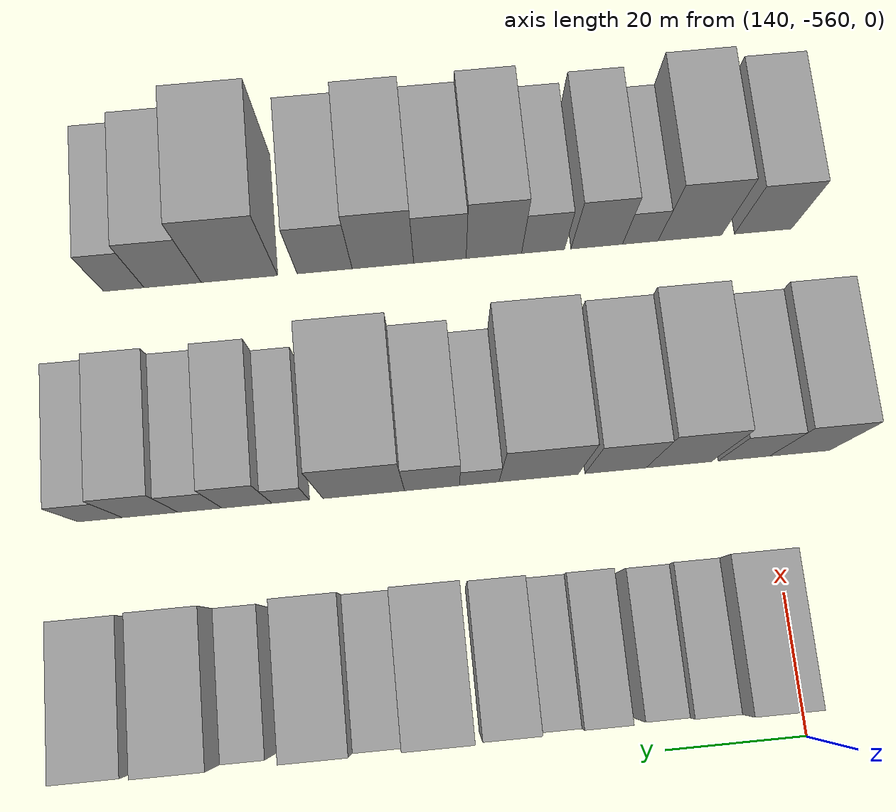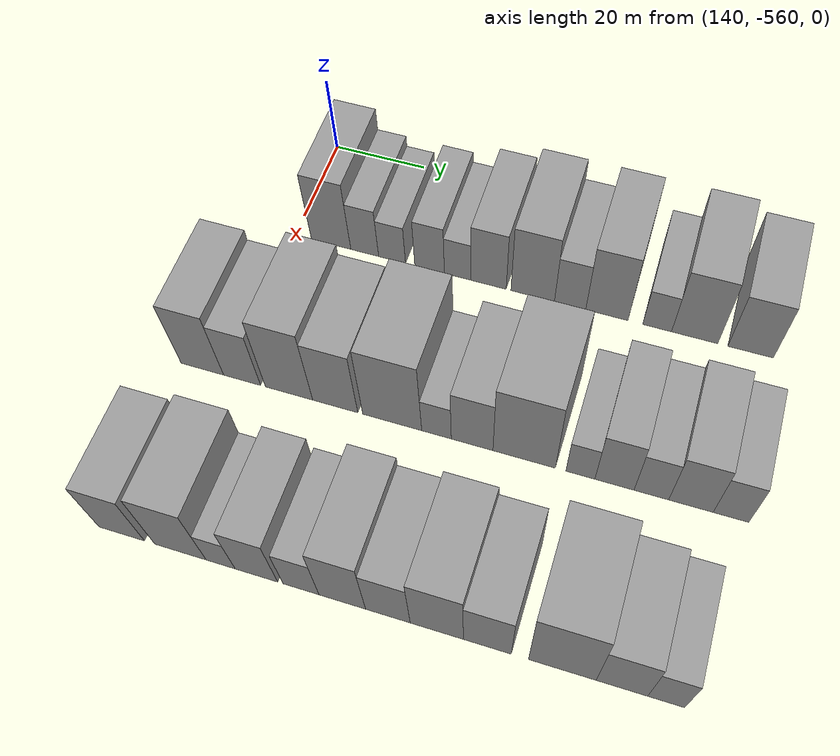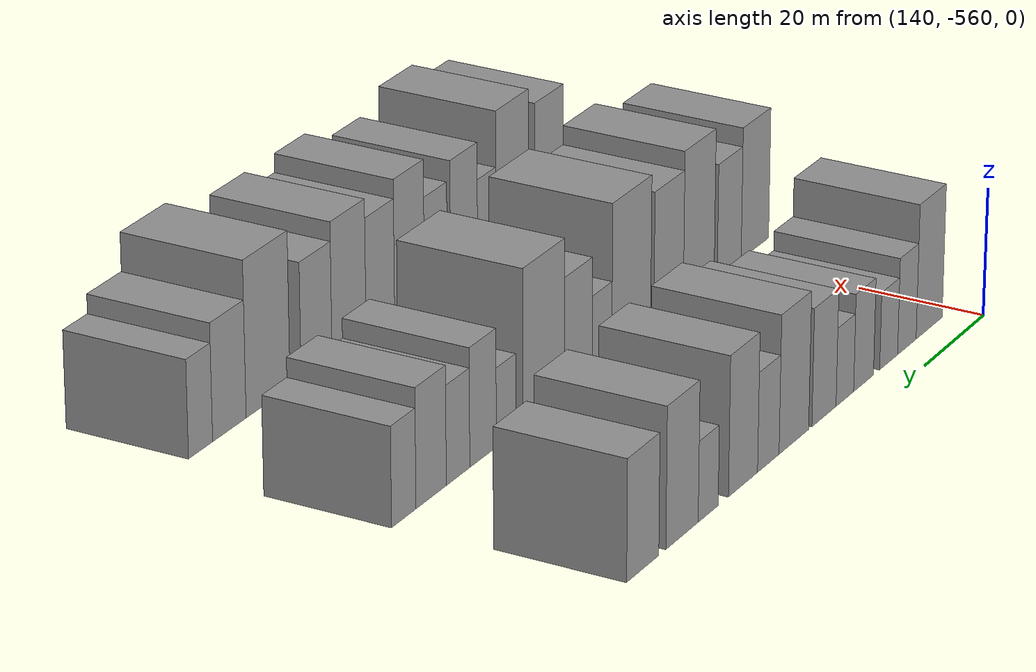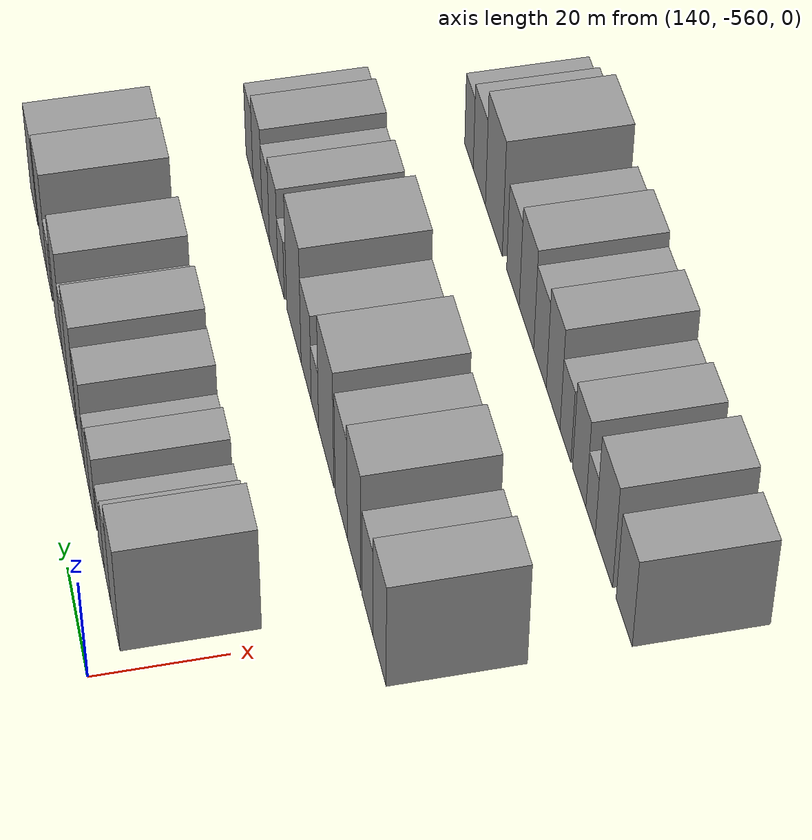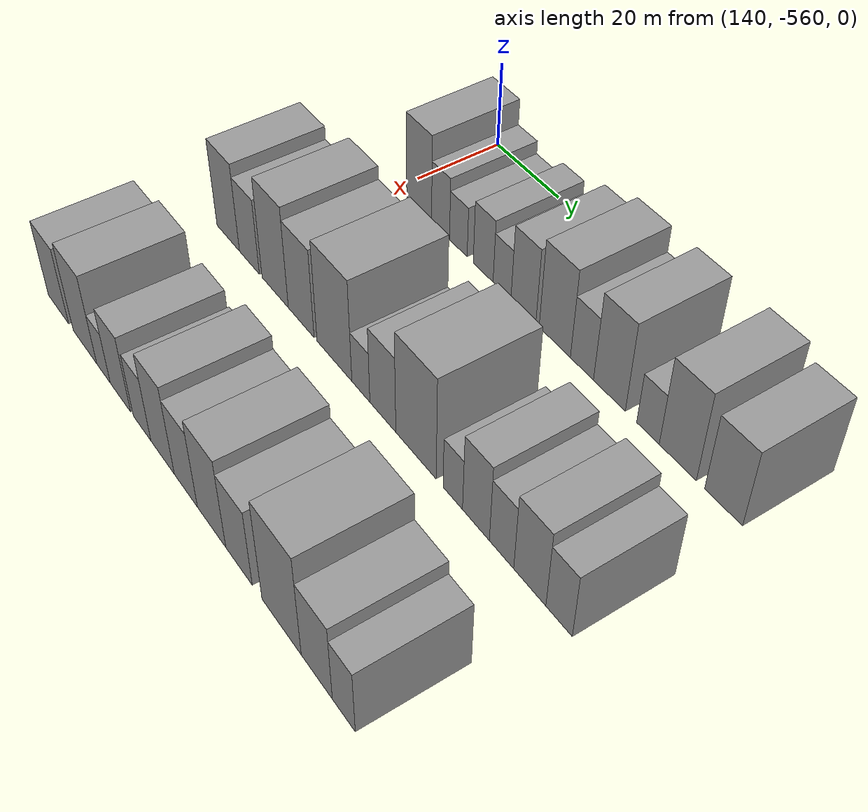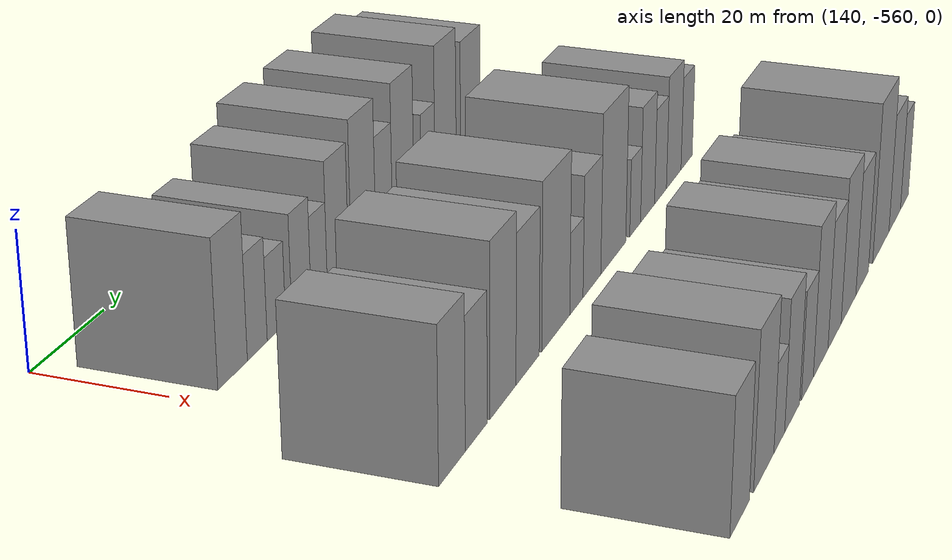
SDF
<sdf version="1.6">
 <world name="default">
  <model name="building_375">
   <static>1</static>
   <pose>155.0000 -552.0836 0 0.000000 0.000000 0.000000</pose>
   <link name="link">
    <pose>0 0 10.50 0 0 0</pose>
    <collision name="collision"><geometry><box><size>20.0000 8.7260 21.0000</size></box></geometry></collision>
    <visual name="visual">
     <cast_shadows>0</cast_shadows>
     <geometry><box><size>20.0000 8.7260 21.0000</size></box></geometry>
     <material>
      <script>
       <uri>model://grey_wall/materials/scripts</uri>
       <uri>model://grey_wall/materials/textures</uri>
       <name>vrc/grey_wall</name>
      </script>
     </material>
    </visual>
   </link>
  </model>
  <model name="building_376">
   <static>1</static>
   <pose>155.0000 -544.6669 0 0.000000 0.000000 0.000000</pose>
   <link name="link">
    <pose>0 0 7.50 0 0 0</pose>
    <collision name="collision"><geometry><box><size>20.0000 6.1074 15.0000</size></box></geometry></collision>
    <visual name="visual">
     <cast_shadows>0</cast_shadows>
     <geometry><box><size>20.0000 6.1074 15.0000</size></box></geometry>
     <material>
      <script>
       <uri>model://grey_wall/materials/scripts</uri>
       <uri>model://grey_wall/materials/textures</uri>
       <name>vrc/grey_wall</name>
      </script>
     </material>
    </visual>
   </link>
  </model>
  <model name="building_377">
   <static>1</static>
   <pose>155.0000 -538.6871 0 0.000000 0.000000 0.000000</pose>
   <link name="link">
    <pose>0 0 6.00 0 0 0</pose>
    <collision name="collision"><geometry><box><size>20.0000 5.8523 12.0000</size></box></geometry></collision>
    <visual name="visual">
     <cast_shadows>0</cast_shadows>
     <geometry><box><size>20.0000 5.8523 12.0000</size></box></geometry>
     <material>
      <script>
       <uri>model://grey_wall/materials/scripts</uri>
       <uri>model://grey_wall/materials/textures</uri>
       <name>vrc/grey_wall</name>
      </script>
     </material>
    </visual>
   </link>
  </model>
  <model name="building_378">
   <static>1</static>
   <pose>155.0000 -530.5755 0 0.000000 0.000000 0.000000</pose>
   <link name="link">
    <pose>0 0 7.50 0 0 0</pose>
    <collision name="collision"><geometry><box><size>20.0000 6.3709 15.0000</size></box></geometry></collision>
    <visual name="visual">
     <cast_shadows>0</cast_shadows>
     <geometry><box><size>20.0000 6.3709 15.0000</size></box></geometry>
     <material>
      <script>
       <uri>model://grey_wall/materials/scripts</uri>
       <uri>model://grey_wall/materials/textures</uri>
       <name>vrc/grey_wall</name>
      </script>
     </material>
    </visual>
   </link>
  </model>
  <model name="building_379">
   <static>1</static>
   <pose>155.0000 -524.5990 0 0.000000 0.000000 0.000000</pose>
   <link name="link">
    <pose>0 0 6.00 0 0 0</pose>
    <collision name="collision"><geometry><box><size>20.0000 5.5821 12.0000</size></box></geometry></collision>
    <visual name="visual">
     <cast_shadows>0</cast_shadows>
     <geometry><box><size>20.0000 5.5821 12.0000</size></box></geometry>
     <material>
      <script>
       <uri>model://grey_wall/materials/scripts</uri>
       <uri>model://grey_wall/materials/textures</uri>
       <name>vrc/grey_wall</name>
      </script>
     </material>
    </visual>
   </link>
  </model>
  <model name="building_380">
   <static>1</static>
   <pose>155.0000 -518.0302 0 0.000000 0.000000 0.000000</pose>
   <link name="link">
    <pose>0 0 9.00 0 0 0</pose>
    <collision name="collision"><geometry><box><size>20.0000 7.5555 18.0000</size></box></geometry></collision>
    <visual name="visual">
     <cast_shadows>0</cast_shadows>
     <geometry><box><size>20.0000 7.5555 18.0000</size></box></geometry>
     <material>
      <script>
       <uri>model://grey_wall/materials/scripts</uri>
       <uri>model://grey_wall/materials/textures</uri>
       <name>vrc/grey_wall</name>
      </script>
     </material>
    </visual>
   </link>
  </model>
  <model name="building_381">
   <static>1</static>
   <pose>155.0000 -508.7044 0 0.000000 0.000000 0.000000</pose>
   <link name="link">
    <pose>0 0 10.50 0 0 0</pose>
    <collision name="collision"><geometry><box><size>20.0000 9.0959 21.0000</size></box></geometry></collision>
    <visual name="visual">
     <cast_shadows>0</cast_shadows>
     <geometry><box><size>20.0000 9.0959 21.0000</size></box></geometry>
     <material>
      <script>
       <uri>model://grey_wall/materials/scripts</uri>
       <uri>model://grey_wall/materials/textures</uri>
       <name>vrc/grey_wall</name>
      </script>
     </material>
    </visual>
   </link>
  </model>
  <model name="building_382">
   <static>1</static>
   <pose>155.0000 -500.9157 0 0.000000 0.000000 0.000000</pose>
   <link name="link">
    <pose>0 0 7.50 0 0 0</pose>
    <collision name="collision"><geometry><box><size>20.0000 6.4814 15.0000</size></box></geometry></collision>
    <visual name="visual">
     <cast_shadows>0</cast_shadows>
     <geometry><box><size>20.0000 6.4814 15.0000</size></box></geometry>
     <material>
      <script>
       <uri>model://grey_wall/materials/scripts</uri>
       <uri>model://grey_wall/materials/textures</uri>
       <name>vrc/grey_wall</name>
      </script>
     </material>
    </visual>
   </link>
  </model>
  <model name="building_383">
   <static>1</static>
   <pose>155.0000 -493.3491 0 0.000000 0.000000 0.000000</pose>
   <link name="link">
    <pose>0 0 10.50 0 0 0</pose>
    <collision name="collision"><geometry><box><size>20.0000 8.6519 21.0000</size></box></geometry></collision>
    <visual name="visual">
     <cast_shadows>0</cast_shadows>
     <geometry><box><size>20.0000 8.6519 21.0000</size></box></geometry>
     <material>
      <script>
       <uri>model://grey_wall/materials/scripts</uri>
       <uri>model://grey_wall/materials/textures</uri>
       <name>vrc/grey_wall</name>
      </script>
     </material>
    </visual>
   </link>
  </model>
  <model name="building_384">
   <static>1</static>
   <pose>155.0000 -483.1150 0 0.000000 0.000000 0.000000</pose>
   <link name="link">
    <pose>0 0 6.00 0 0 0</pose>
    <collision name="collision"><geometry><box><size>20.0000 5.8162 12.0000</size></box></geometry></collision>
    <visual name="visual">
     <cast_shadows>0</cast_shadows>
     <geometry><box><size>20.0000 5.8162 12.0000</size></box></geometry>
     <material>
      <script>
       <uri>model://grey_wall/materials/scripts</uri>
       <uri>model://grey_wall/materials/textures</uri>
       <name>vrc/grey_wall</name>
      </script>
     </material>
    </visual>
   </link>
  </model>
  <model name="building_385">
   <static>1</static>
   <pose>155.0000 -475.5812 0 0.000000 0.000000 0.000000</pose>
   <link name="link">
    <pose>0 0 10.50 0 0 0</pose>
    <collision name="collision"><geometry><box><size>20.0000 9.2514 21.0000</size></box></geometry></collision>
    <visual name="visual">
     <cast_shadows>0</cast_shadows>
     <geometry><box><size>20.0000 9.2514 21.0000</size></box></geometry>
     <material>
      <script>
       <uri>model://grey_wall/materials/scripts</uri>
       <uri>model://grey_wall/materials/textures</uri>
       <name>vrc/grey_wall</name>
      </script>
     </material>
    </visual>
   </link>
  </model>
  <model name="building_386">
   <static>1</static>
   <pose>155.0000 -464.4736 0 0.000000 0.000000 0.000000</pose>
   <link name="link">
    <pose>0 0 9.00 0 0 0</pose>
    <collision name="collision"><geometry><box><size>20.0000 8.9640 18.0000</size></box></geometry></collision>
    <visual name="visual">
     <cast_shadows>0</cast_shadows>
     <geometry><box><size>20.0000 8.9640 18.0000</size></box></geometry>
     <material>
      <script>
       <uri>model://grey_wall/materials/scripts</uri>
       <uri>model://grey_wall/materials/textures</uri>
       <name>vrc/grey_wall</name>
      </script>
     </material>
    </visual>
   </link>
  </model>
  <model name="building_495">
   <static>1</static>
   <pose>190.0000 -565.5214 0 0.000000 0.000000 0.000000</pose>
   <link name="link">
    <pose>0 0 10.50 0 0 0</pose>
    <collision name="collision"><geometry><box><size>20.0000 8.9572 21.0000</size></box></geometry></collision>
    <visual name="visual">
     <cast_shadows>0</cast_shadows>
     <geometry><box><size>20.0000 8.9572 21.0000</size></box></geometry>
     <material>
      <script>
       <uri>model://grey_wall/materials/scripts</uri>
       <uri>model://grey_wall/materials/textures</uri>
       <name>vrc/grey_wall</name>
      </script>
     </material>
    </visual>
   </link>
  </model>
  <model name="building_496">
   <static>1</static>
   <pose>190.0000 -557.1911 0 0.000000 0.000000 0.000000</pose>
   <link name="link">
    <pose>0 0 9.00 0 0 0</pose>
    <collision name="collision"><geometry><box><size>20.0000 7.7033 18.0000</size></box></geometry></collision>
    <visual name="visual">
     <cast_shadows>0</cast_shadows>
     <geometry><box><size>20.0000 7.7033 18.0000</size></box></geometry>
     <material>
      <script>
       <uri>model://grey_wall/materials/scripts</uri>
       <uri>model://grey_wall/materials/textures</uri>
       <name>vrc/grey_wall</name>
      </script>
     </material>
    </visual>
   </link>
  </model>
  <model name="building_497">
   <static>1</static>
   <pose>190.0000 -547.4751 0 0.000000 0.000000 0.000000</pose>
   <link name="link">
    <pose>0 0 12.00 0 0 0</pose>
    <collision name="collision"><geometry><box><size>20.0000 9.7288 24.0000</size></box></geometry></collision>
    <visual name="visual">
     <cast_shadows>0</cast_shadows>
     <geometry><box><size>20.0000 9.7288 24.0000</size></box></geometry>
     <material>
      <script>
       <uri>model://grey_wall/materials/scripts</uri>
       <uri>model://grey_wall/materials/textures</uri>
       <name>vrc/grey_wall</name>
      </script>
     </material>
    </visual>
   </link>
  </model>
  <model name="building_498">
   <static>1</static>
   <pose>190.0000 -538.0414 0 0.000000 0.000000 0.000000</pose>
   <link name="link">
    <pose>0 0 10.50 0 0 0</pose>
    <collision name="collision"><geometry><box><size>20.0000 9.1387 21.0000</size></box></geometry></collision>
    <visual name="visual">
     <cast_shadows>0</cast_shadows>
     <geometry><box><size>20.0000 9.1387 21.0000</size></box></geometry>
     <material>
      <script>
       <uri>model://grey_wall/materials/scripts</uri>
       <uri>model://grey_wall/materials/textures</uri>
       <name>vrc/grey_wall</name>
      </script>
     </material>
    </visual>
   </link>
  </model>
  <model name="building_499">
   <static>1</static>
   <pose>190.0000 -526.5962 0 0.000000 0.000000 0.000000</pose>
   <link name="link">
    <pose>0 0 12.00 0 0 0</pose>
    <collision name="collision"><geometry><box><size>20.0000 11.7518 24.0000</size></box></geometry></collision>
    <visual name="visual">
     <cast_shadows>0</cast_shadows>
     <geometry><box><size>20.0000 11.7518 24.0000</size></box></geometry>
     <material>
      <script>
       <uri>model://grey_wall/materials/scripts</uri>
       <uri>model://grey_wall/materials/textures</uri>
       <name>vrc/grey_wall</name>
      </script>
     </material>
    </visual>
   </link>
  </model>
  <model name="building_500">
   <static>1</static>
   <pose>190.0000 -517.8050 0 0.000000 0.000000 0.000000</pose>
   <link name="link">
    <pose>0 0 6.00 0 0 0</pose>
    <collision name="collision"><geometry><box><size>20.0000 5.8305 12.0000</size></box></geometry></collision>
    <visual name="visual">
     <cast_shadows>0</cast_shadows>
     <geometry><box><size>20.0000 5.8305 12.0000</size></box></geometry>
     <material>
      <script>
       <uri>model://grey_wall/materials/scripts</uri>
       <uri>model://grey_wall/materials/textures</uri>
       <name>vrc/grey_wall</name>
      </script>
     </material>
    </visual>
   </link>
  </model>
  <model name="building_501">
   <static>1</static>
   <pose>190.0000 -510.8318 0 0.000000 0.000000 0.000000</pose>
   <link name="link">
    <pose>0 0 9.00 0 0 0</pose>
    <collision name="collision"><geometry><box><size>20.0000 8.1160 18.0000</size></box></geometry></collision>
    <visual name="visual">
     <cast_shadows>0</cast_shadows>
     <geometry><box><size>20.0000 8.1160 18.0000</size></box></geometry>
     <material>
      <script>
       <uri>model://grey_wall/materials/scripts</uri>
       <uri>model://grey_wall/materials/textures</uri>
       <name>vrc/grey_wall</name>
      </script>
     </material>
    </visual>
   </link>
  </model>
  <model name="building_502">
   <static>1</static>
   <pose>190.0000 -500.7745 0 0.000000 0.000000 0.000000</pose>
   <link name="link">
    <pose>0 0 12.00 0 0 0</pose>
    <collision name="collision"><geometry><box><size>20.0000 11.9985 24.0000</size></box></geometry></collision>
    <visual name="visual">
     <cast_shadows>0</cast_shadows>
     <geometry><box><size>20.0000 11.9985 24.0000</size></box></geometry>
     <material>
      <script>
       <uri>model://grey_wall/materials/scripts</uri>
       <uri>model://grey_wall/materials/textures</uri>
       <name>vrc/grey_wall</name>
      </script>
     </material>
    </visual>
   </link>
  </model>
  <model name="building_503">
   <static>1</static>
   <pose>190.0000 -490.0362 0 0.000000 0.000000 0.000000</pose>
   <link name="link">
    <pose>0 0 6.00 0 0 0</pose>
    <collision name="collision"><geometry><box><size>20.0000 5.4782 12.0000</size></box></geometry></collision>
    <visual name="visual">
     <cast_shadows>0</cast_shadows>
     <geometry><box><size>20.0000 5.4782 12.0000</size></box></geometry>
     <material>
      <script>
       <uri>model://grey_wall/materials/scripts</uri>
       <uri>model://grey_wall/materials/textures</uri>
       <name>vrc/grey_wall</name>
      </script>
     </material>
    </visual>
   </link>
  </model>
  <model name="building_504">
   <static>1</static>
   <pose>190.0000 -483.6274 0 0.000000 0.000000 0.000000</pose>
   <link name="link">
    <pose>0 0 9.00 0 0 0</pose>
    <collision name="collision"><geometry><box><size>20.0000 7.3394 18.0000</size></box></geometry></collision>
    <visual name="visual">
     <cast_shadows>0</cast_shadows>
     <geometry><box><size>20.0000 7.3394 18.0000</size></box></geometry>
     <material>
      <script>
       <uri>model://grey_wall/materials/scripts</uri>
       <uri>model://grey_wall/materials/textures</uri>
       <name>vrc/grey_wall</name>
      </script>
     </material>
    </visual>
   </link>
  </model>
  <model name="building_505">
   <static>1</static>
   <pose>190.0000 -476.7442 0 0.000000 0.000000 0.000000</pose>
   <link name="link">
    <pose>0 0 7.50 0 0 0</pose>
    <collision name="collision"><geometry><box><size>20.0000 6.4271 15.0000</size></box></geometry></collision>
    <visual name="visual">
     <cast_shadows>0</cast_shadows>
     <geometry><box><size>20.0000 6.4271 15.0000</size></box></geometry>
     <material>
      <script>
       <uri>model://grey_wall/materials/scripts</uri>
       <uri>model://grey_wall/materials/textures</uri>
       <name>vrc/grey_wall</name>
      </script>
     </material>
    </visual>
   </link>
  </model>
  <model name="building_506">
   <static>1</static>
   <pose>190.0000 -469.4486 0 0.000000 0.000000 0.000000</pose>
   <link name="link">
    <pose>0 0 9.00 0 0 0</pose>
    <collision name="collision"><geometry><box><size>20.0000 8.1640 18.0000</size></box></geometry></collision>
    <visual name="visual">
     <cast_shadows>0</cast_shadows>
     <geometry><box><size>20.0000 8.1640 18.0000</size></box></geometry>
     <material>
      <script>
       <uri>model://grey_wall/materials/scripts</uri>
       <uri>model://grey_wall/materials/textures</uri>
       <name>vrc/grey_wall</name>
      </script>
     </material>
    </visual>
   </link>
  </model>
  <model name="building_507">
   <static>1</static>
   <pose>190.0000 -462.1337 0 0.000000 0.000000 0.000000</pose>
   <link name="link">
    <pose>0 0 7.50 0 0 0</pose>
    <collision name="collision"><geometry><box><size>20.0000 6.4660 15.0000</size></box></geometry></collision>
    <visual name="visual">
     <cast_shadows>0</cast_shadows>
     <geometry><box><size>20.0000 6.4660 15.0000</size></box></geometry>
     <material>
      <script>
       <uri>model://grey_wall/materials/scripts</uri>
       <uri>model://grey_wall/materials/textures</uri>
       <name>vrc/grey_wall</name>
      </script>
     </material>
    </visual>
   </link>
  </model>
  <model name="building_621">
   <static>1</static>
   <pose>225.0000 -565.5274 0 0.000000 0.000000 0.000000</pose>
   <link name="link">
    <pose>0 0 9.00 0 0 0</pose>
    <collision name="collision"><geometry><box><size>20.0000 8.9452 18.0000</size></box></geometry></collision>
    <visual name="visual">
     <cast_shadows>0</cast_shadows>
     <geometry><box><size>20.0000 8.9452 18.0000</size></box></geometry>
     <material>
      <script>
       <uri>model://grey_wall/materials/scripts</uri>
       <uri>model://grey_wall/materials/textures</uri>
       <name>vrc/grey_wall</name>
      </script>
     </material>
    </visual>
   </link>
  </model>
  <model name="building_622">
   <static>1</static>
   <pose>225.0000 -554.0869 0 0.000000 0.000000 0.000000</pose>
   <link name="link">
    <pose>0 0 10.50 0 0 0</pose>
    <collision name="collision"><geometry><box><size>20.0000 9.9358 21.0000</size></box></geometry></collision>
    <visual name="visual">
     <cast_shadows>0</cast_shadows>
     <geometry><box><size>20.0000 9.9358 21.0000</size></box></geometry>
     <material>
      <script>
       <uri>model://grey_wall/materials/scripts</uri>
       <uri>model://grey_wall/materials/textures</uri>
       <name>vrc/grey_wall</name>
      </script>
     </material>
    </visual>
   </link>
  </model>
  <model name="building_623">
   <static>1</static>
   <pose>225.0000 -546.3599 0 0.000000 0.000000 0.000000</pose>
   <link name="link">
    <pose>0 0 6.00 0 0 0</pose>
    <collision name="collision"><geometry><box><size>20.0000 5.5183 12.0000</size></box></geometry></collision>
    <visual name="visual">
     <cast_shadows>0</cast_shadows>
     <geometry><box><size>20.0000 5.5183 12.0000</size></box></geometry>
     <material>
      <script>
       <uri>model://grey_wall/materials/scripts</uri>
       <uri>model://grey_wall/materials/textures</uri>
       <name>vrc/grey_wall</name>
      </script>
     </material>
    </visual>
   </link>
  </model>
  <model name="building_624">
   <static>1</static>
   <pose>225.0000 -539.5913 0 0.000000 0.000000 0.000000</pose>
   <link name="link">
    <pose>0 0 9.00 0 0 0</pose>
    <collision name="collision"><geometry><box><size>20.0000 8.0188 18.0000</size></box></geometry></collision>
    <visual name="visual">
     <cast_shadows>0</cast_shadows>
     <geometry><box><size>20.0000 8.0188 18.0000</size></box></geometry>
     <material>
      <script>
       <uri>model://grey_wall/materials/scripts</uri>
       <uri>model://grey_wall/materials/textures</uri>
       <name>vrc/grey_wall</name>
      </script>
     </material>
    </visual>
   </link>
  </model>
  <model name="building_625">
   <static>1</static>
   <pose>225.0000 -531.2439 0 0.000000 0.000000 0.000000</pose>
   <link name="link">
    <pose>0 0 7.50 0 0 0</pose>
    <collision name="collision"><geometry><box><size>20.0000 6.6760 15.0000</size></box></geometry></collision>
    <visual name="visual">
     <cast_shadows>0</cast_shadows>
     <geometry><box><size>20.0000 6.6760 15.0000</size></box></geometry>
     <material>
      <script>
       <uri>model://grey_wall/materials/scripts</uri>
       <uri>model://grey_wall/materials/textures</uri>
       <name>vrc/grey_wall</name>
      </script>
     </material>
    </visual>
   </link>
  </model>
  <model name="building_626">
   <static>1</static>
   <pose>225.0000 -523.6167 0 0.000000 0.000000 0.000000</pose>
   <link name="link">
    <pose>0 0 10.50 0 0 0</pose>
    <collision name="collision"><geometry><box><size>20.0000 8.5783 21.0000</size></box></geometry></collision>
    <visual name="visual">
     <cast_shadows>0</cast_shadows>
     <geometry><box><size>20.0000 8.5783 21.0000</size></box></geometry>
     <material>
      <script>
       <uri>model://grey_wall/materials/scripts</uri>
       <uri>model://grey_wall/materials/textures</uri>
       <name>vrc/grey_wall</name>
      </script>
     </material>
    </visual>
   </link>
  </model>
  <model name="building_627">
   <static>1</static>
   <pose>225.0000 -515.2803 0 0.000000 0.000000 0.000000</pose>
   <link name="link">
    <pose>0 0 9.00 0 0 0</pose>
    <collision name="collision"><geometry><box><size>20.0000 8.0946 18.0000</size></box></geometry></collision>
    <visual name="visual">
     <cast_shadows>0</cast_shadows>
     <geometry><box><size>20.0000 8.0946 18.0000</size></box></geometry>
     <material>
      <script>
       <uri>model://grey_wall/materials/scripts</uri>
       <uri>model://grey_wall/materials/textures</uri>
       <name>vrc/grey_wall</name>
      </script>
     </material>
    </visual>
   </link>
  </model>
  <model name="building_628">
   <static>1</static>
   <pose>225.0000 -506.4869 0 0.000000 0.000000 0.000000</pose>
   <link name="link">
    <pose>0 0 10.50 0 0 0</pose>
    <collision name="collision"><geometry><box><size>20.0000 9.4920 21.0000</size></box></geometry></collision>
    <visual name="visual">
     <cast_shadows>0</cast_shadows>
     <geometry><box><size>20.0000 9.4920 21.0000</size></box></geometry>
     <material>
      <script>
       <uri>model://grey_wall/materials/scripts</uri>
       <uri>model://grey_wall/materials/textures</uri>
       <name>vrc/grey_wall</name>
      </script>
     </material>
    </visual>
   </link>
  </model>
  <model name="building_629">
   <static>1</static>
   <pose>225.0000 -497.5077 0 0.000000 0.000000 0.000000</pose>
   <link name="link">
    <pose>0 0 9.00 0 0 0</pose>
    <collision name="collision"><geometry><box><size>20.0000 8.4664 18.0000</size></box></geometry></collision>
    <visual name="visual">
     <cast_shadows>0</cast_shadows>
     <geometry><box><size>20.0000 8.4664 18.0000</size></box></geometry>
     <material>
      <script>
       <uri>model://grey_wall/materials/scripts</uri>
       <uri>model://grey_wall/materials/textures</uri>
       <name>vrc/grey_wall</name>
      </script>
     </material>
    </visual>
   </link>
  </model>
  <model name="building_630">
   <static>1</static>
   <pose>225.0000 -484.4174 0 0.000000 0.000000 0.000000</pose>
   <link name="link">
    <pose>0 0 12.00 0 0 0</pose>
    <collision name="collision"><geometry><box><size>20.0000 11.7142 24.0000</size></box></geometry></collision>
    <visual name="visual">
     <cast_shadows>0</cast_shadows>
     <geometry><box><size>20.0000 11.7142 24.0000</size></box></geometry>
     <material>
      <script>
       <uri>model://grey_wall/materials/scripts</uri>
       <uri>model://grey_wall/materials/textures</uri>
       <name>vrc/grey_wall</name>
      </script>
     </material>
    </visual>
   </link>
  </model>
  <model name="building_631">
   <static>1</static>
   <pose>225.0000 -474.1862 0 0.000000 0.000000 0.000000</pose>
   <link name="link">
    <pose>0 0 9.00 0 0 0</pose>
    <collision name="collision"><geometry><box><size>20.0000 8.7482 18.0000</size></box></geometry></collision>
    <visual name="visual">
     <cast_shadows>0</cast_shadows>
     <geometry><box><size>20.0000 8.7482 18.0000</size></box></geometry>
     <material>
      <script>
       <uri>model://grey_wall/materials/scripts</uri>
       <uri>model://grey_wall/materials/textures</uri>
       <name>vrc/grey_wall</name>
      </script>
     </material>
    </visual>
   </link>
  </model>
  <model name="building_632">
   <static>1</static>
   <pose>225.0000 -466.7084 0 0.000000 0.000000 0.000000</pose>
   <link name="link">
    <pose>0 0 7.50 0 0 0</pose>
    <collision name="collision"><geometry><box><size>20.0000 6.2074 15.0000</size></box></geometry></collision>
    <visual name="visual">
     <cast_shadows>0</cast_shadows>
     <geometry><box><size>20.0000 6.2074 15.0000</size></box></geometry>
     <material>
      <script>
       <uri>model://grey_wall/materials/scripts</uri>
       <uri>model://grey_wall/materials/textures</uri>
       <name>vrc/grey_wall</name>
      </script>
     </material>
    </visual>
   </link>
  </model>
 </world>
</sdf>
